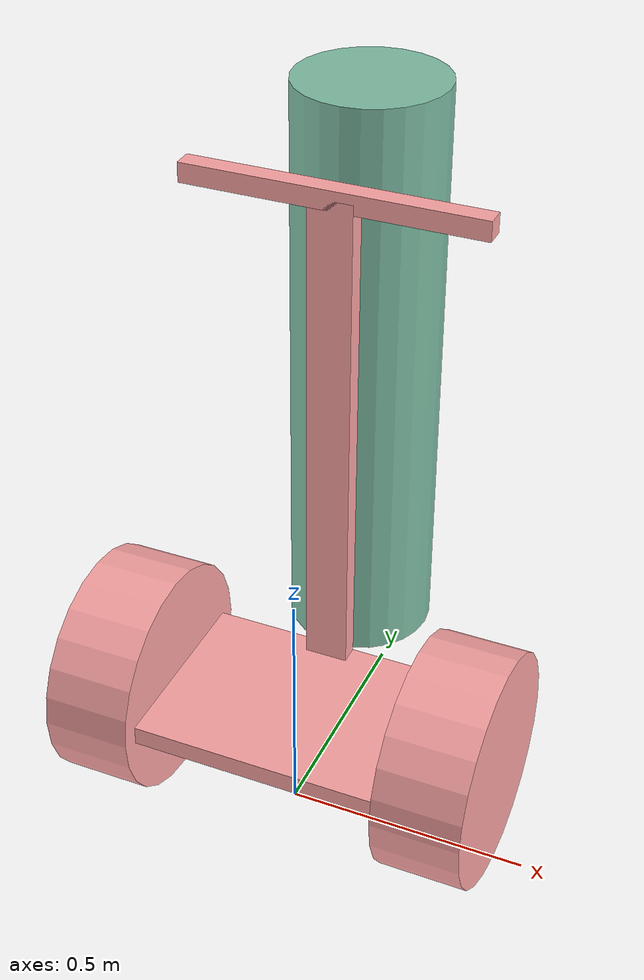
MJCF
<!-- 双轮差速高尔夫球车模型 -->
<!-- 尺寸：轮径48cm，轮宽18cm，轴长70cm，车把104cm，球包120cm -->
<!-- 质量：底盘37.8kg，车把5kg，球包10kg，车轮4.5kg×2，总重61.8kg -->
<mujoco model="golf10_barth">
    <!-- 材质 -->
    <asset>
        <texture type="2d" name="wheel_texture" builtin="checker" mark="edge"
                 rgb1="1 1 1" rgb2="1 0.3 0.3"
                 markrgb="0.3 0.3 0.3" width="1024" height="1024"/>
        <material name="wheel_mat" texture="wheel_texture" texuniform="true" texrepeat="5 5"/>
        <texture type="2d" name="body_texture" builtin="gradient" rgb1="1 1 1"
                 rgb2="1 0.3 0.3" width="512" height="512"/>
        <material name="body_mat" texture="body_texture" texrepeat="4 2" shininess="0.3"/>
        <texture type="2d" name="bag_texture" builtin="gradient" rgb1="1 1 1"
                 rgb2="0 0.5 0.3" width="256" height="256"/>
        <material name="bag_mat" texture="bag_texture" texrepeat="4 2" shininess="0.3"/>
    </asset>

    <worldbody>

        <!-- 整车（轮轴中心离地0.24m） -->
        <body name="segway" pos="0 0 0.24">
            <joint name="segway_free" type="free" damping="0.05"/>

            <!-- 底盘（位于车轮中心高度） -->
            <!-- 底盘质心相对轮轴：COMY0 档由代码 model.body_ipos[cid,1]=0.0 归零（平衡角≈+29°）。
                 MuJoCo 编译会把 inertial pos 的 -0.12 偏移吸收进 body frame，故 body_ipos 实为 (0,-0.12,0)，
                 运行时覆盖 y=0 使其落在轮轴正上方。 -->
            <body name="chassis" pos="0 0 0">
                <inertial pos="0.0 -0.12 0.0" quat="0.707107 0 0 0.707107"
                          mass="37.8" diaginertia="0.75 1.35 1.60"/>
                <geom type="box" size="0.35 0.20 0.02" material="body_mat"/>
            </body>

            <!-- 车把：长104cm，底部从轮轴稍上方开始 -->
            <body name="handlebar" pos="0 0 0.02">
                <inertial pos="0.0 0.0 0.0" quat="0.707107 0 0 0.707107"
                          mass="5.0" diaginertia="0.5 0.45 0.05"/>
                <geom type="box" size="0.045 0.02 0.52" pos="0 0.18 0.52" material="body_mat"/>
                <geom type="box" size="0.3 0.02 0.02" pos="0 0.18 1.04" material="body_mat"/>

                <!-- 增加一个球包挂点，让球包可以在转弯时模拟左右摇晃 -->
                <body name="bag_mount" pos="0 0.35 1.2">  <!-- 0 0 1.2是中心位置 0 0.35 1.2是球包挂前面 -->
                    <!-- 左右摆动 -->
                    <joint name="bag_swing" type="hinge" axis="0 1 0" limited="true"
                           range="-0.05 0.05" damping="2"/>
                    <!-- 球包 -->
                    <body name="golf_bag" pos="0 0 -0.6">
                        <inertial pos="0 0 0" mass="10" diaginertia="1.10 1.10 0.10"/>
                        <geom type="cylinder" size="0.15 0.6" material="bag_mat"/>
                    </body>
                </body>
            </body>

            <!-- 左轮：直径48cm，宽18cm，位置x=-0.35 -->
            <body name="l_wheel" pos="-0.35 0 0">
                <inertial pos="0 0 0" quat="0.5 0.5 -0.5 0.5"
                          mass="4.5" diaginertia="0.085 0.043 0.043"/>
                <joint name="torso_l_wheel" type="hinge" pos="0 0 0" axis="-1 0 0" damping="0.02"/>
                <geom type="cylinder" size="0.24 0.09" quat="0.707107 0 0.707107 0"
                      material="wheel_mat" contype="2" conaffinity="1" friction="2 1 0.8"/>
            </body>

            <!-- 右轮：直径48cm，宽18cm，位置x=0.35 -->
            <body name="r_wheel" pos="0.35 0 0">
                <inertial pos="0 0 0" quat="0.5 0.5 -0.5 0.5"
                          mass="4.5" diaginertia="0.085 0.043 0.043"/>
                <joint name="torso_r_wheel" type="hinge" pos="0 0 0" axis="-1 0 0" damping="0.02"/>
                <geom type="cylinder" size="0.24 0.09" quat="0.707107 0 0.707107 0"
                      material="wheel_mat" contype="2" conaffinity="1" friction="2 1 0.8"/>
            </body>
        </body>
        <site name="cmd_ch" size="0.001" pos="0 0 0.24"/>   <!-- 指令通道锚点（零增益虚拟执行器挂载处） -->
    </worldbody>

    <actuator>
        <!-- 电机 -->
        <motor name="motor_l_wheel" joint="torso_l_wheel" gear="1" ctrllimited="true" ctrlrange="-50 50"/>
        <motor name="motor_r_wheel" joint="torso_r_wheel" gear="1" ctrllimited="true" ctrlrange="-50 50"/>
        <!-- 指令通道：零增益，仅作 MuJoCo 右侧面板原生滑块（不参与动力学）。
             cmd_bag = 球包质量，实时改质量并同步平衡角锚与跟随增益。-->
        <motor name="cmd_bag" site="cmd_ch" gear="0 0 0 0 0 0" ctrllimited="true" ctrlrange="1.5 10"/>
    </actuator>

</mujoco>
